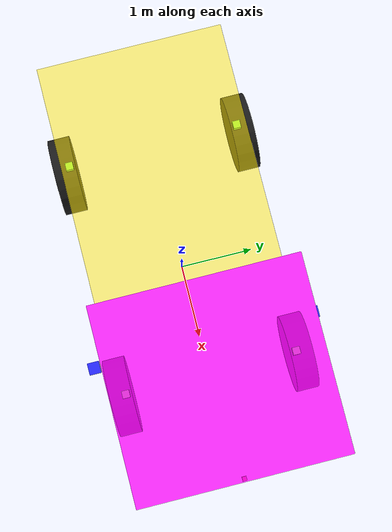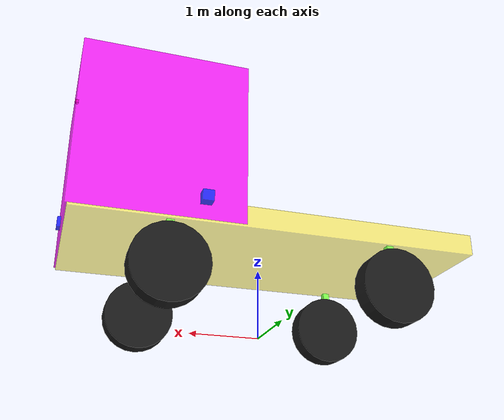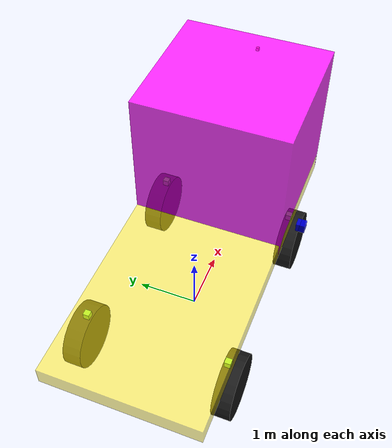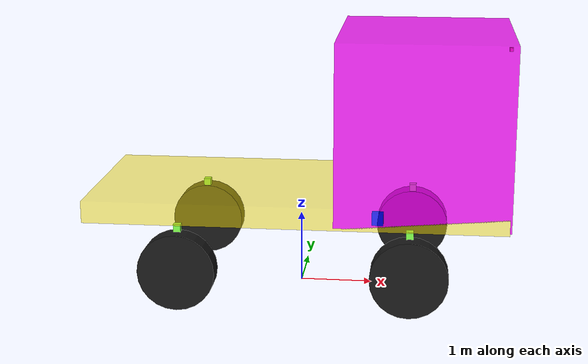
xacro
<?xml version="1.0"?>

<!-- Robot name -->
<robot name="at" xmlns:xacro="http://www.ros.org/wiki/xacro">

<!-- Included URDF Files -->
<xacro:include filename="$(find at_gazebo)/gazebo/at.gazebo" />
<xacro:include filename="$(find arts_description)/urdf/arts.xacro" />

<!-- user input dimensions  ( DEBUG: all mass values have been divided by 100 )  -->
<xacro:property name="robot"    value="at" />
<xacro:property name="pi"       value="3.141592" />
<xacro:property name="body_length"   value="5.69" />
<xacro:property name="body_width"    value="2.495" />
<xacro:property name="body_height"   value="0.523" />
<xacro:property name="body_mass"   value="1000." />
<xacro:property name="platform_length"   value="${body_length}" />
<xacro:property name="platform_width"   value="2.495" />
<xacro:property name="platform_height"   value=".3" />
<xacro:property name="platform_mass"   value="500." />
<xacro:property name="wheel_width"    value="0.05" />
<xacro:property name="wheel_width_vis"    value="0.3" />
<xacro:property name="wheel_radius"   value="0.523" />
<xacro:property name="wheel_mass"   value="100." />
<xacro:property name="wheel_hinge_width"   value="0.1" />
<xacro:property name="wheel_hinge_mass"   value="10." />
<xacro:property name="lidar_mass"   value="1." />
<xacro:property name="lidar_side"   value="0.15" />

<!-- TNO definitions -->
<xacro:property name="camera_link" value="0.05" /> <!-- Size of square 'camera' box -->
<!-- derived dimensions -->
<xacro:property name="wheel_hinge_height"   value="${wheel_radius+0.1}" />
<xacro:property name="body_floor_clearance"   value="${wheel_radius+wheel_hinge_height-body_height}" />

<!-- ~~~~~~~~~~~~~~~~~~~~~~~ BODY AND PLATFORM ~~~~~~~~~~~~~~~~~~~~~~~~~~~~~~~~~~~~~~~~ -->

<!-- at Footprint Link (at footprint on ground)-->
<link name="${robot}_footprint">
    <visual>
        <origin xyz="0 0 0" rpy="0 0 0"/>
        <geometry>
            <box size="0.01 0.01 0.01"/>
        </geometry>
        <material name="white">
            <color rgba="1 1 1 0.1"/>
        </material>
    </visual>

<!--    Comment collision below for normal mode: wheels on te ground -->
<!--    Uncomment collision below for "Podium" mode: Useful to check wheel control without moving at -->
</link>

<!-- at Base Link (at body)-->
<joint name="${robot}_footprint_2_base" type="fixed" >
    <parent link="${robot}_footprint"/>
    <child link="${robot}_base_link"/>
    <origin xyz="0 0 ${body_floor_clearance+0.5*body_height}" rpy="0 0 0"/>
</joint>
<link name="${robot}_base_link">

</link>

<!-- at top platform-->
<joint name="${robot}_base_2_platform" type="fixed" >
    <parent link="${robot}_base_link"/>
    <child link="${robot}_platform"/>
    <origin xyz="0 0 ${0.5*body_height + 0.5*platform_height}" rpy="0 0 0"/>
</joint>
<link name="${robot}_platform">
    <visual>
        <origin xyz="0 0 0" rpy="0 0 0"/>
        <geometry>
            <box size="${platform_length} ${platform_width} ${platform_height}"/>
        </geometry>
        <material name="yellow">
            <color rgba="1.0 0.9 0.0 0.5"/>
        </material>
    </visual>

    <collision>
        <origin xyz="0 0 0" rpy="0 0 0"/>
        <geometry>
            <box size="${platform_length} ${platform_width} ${platform_height}"/>
        </geometry>
    </collision>

    <inertial>
        <mass value="${platform_mass}" />
        <origin xyz="0 0 0" rpy="0 0 0"/>
        <inertia ixx="${0.083*platform_mass*(platform_width*platform_width+platform_height*platform_height)}"
                    ixy="0.0"
                    ixz="0.0"
                    iyy="${0.083*platform_mass*(platform_length*platform_length+platform_height*platform_height)}"
                    iyz="0.0"
                    izz="${0.083*platform_mass*(platform_length*platform_length+platform_width*platform_width)}" />
    </inertial>
</link>

<!-- at chassis -->
<joint name="${robot}_platform_2_chassis" type="fixed" >
    <parent link="${robot}_platform"/>
    <child link="${robot}_chassis"/>
    <origin xyz="${0.3*platform_length} 0 ${3.7*platform_height}" rpy="0 0 0"/>
</joint>
<link name="${robot}_chassis">
    <visual>
        <origin xyz="0 0 0" rpy="0 0 0"/>
        <geometry>
            <box size="2.325 2.495 2.452"/>
        </geometry>
        <material name="purple">
            <color rgba="1.0 0.0 1.0 0.8"/>
        </material>
    </visual>
       <collision>
        <origin xyz="0 0 0" rpy="0 0 0"/>
        <geometry>
            <box size="2.325 2.495 2.452"/>
        </geometry>
    </collision>
    <inertial>
        <mass value="0.01" />
        <origin xyz="0 0 0" rpy="0 0 0"/>
<inertia ixx="${0.083*platform_mass*(platform_width*platform_width+platform_height*platform_height)}"
                    ixy="0.0"
                    ixz="0.0"
                    iyy="${0.083*platform_mass*(platform_length*platform_length+platform_height*platform_height)}"
                    iyz="0.0"
                    izz="${0.083*platform_mass*(platform_length*platform_length+platform_width*platform_width)}" />
    </inertial>
</link>

<!-- ~~~~~~~~~~~~~~~~~~~~~~~~~~~~~~ WHEELS ~~~~~~~~~~~~~~~~~~~~~~~~~~~~~~~~~~~~~~~~~~~~ -->

<!-- front left hinge-->
<joint name="${robot}_platform_2_fl_hinge" type="revolute" >
    <parent link="${robot}_platform"/>
    <child link="${robot}_fl_hinge"/>
    <axis xyz="0 0 1"/>
    <limit effort="100000." lower="${-0.3*pi}" upper="${0.3*pi}" velocity="1."/>
    <dynamics damping="100."/>
    <origin xyz="${0.4*platform_length-wheel_radius-0.2} ${0.5*platform_width-0.5*wheel_hinge_width-wheel_width} ${-0.5*platform_height-0.5*wheel_hinge_height}" rpy="0 0 0"/>
</joint>
<link name="${robot}_fl_hinge">
    <visual>
        <origin xyz="0 0 0" rpy="0 0 0"/>
        <geometry>
            <box size="${wheel_hinge_width} ${wheel_hinge_width} ${wheel_hinge_height}"/>
        </geometry>
        <material name="green2">
            <color rgba="0.5 1 0.3 1"/>
        </material>
    </visual>
           <collision>
        <origin xyz="0 0 0" rpy="0 0 0"/>
        <geometry>
            <box size="${wheel_hinge_width} ${wheel_hinge_width} ${wheel_hinge_height}"/>
        </geometry>
    </collision>
    <inertial>
        <mass value="${wheel_hinge_mass}" />
        <origin xyz="0 0 0" rpy="0 0 0"/>
        <inertia ixx="${0.083*wheel_hinge_mass*(wheel_hinge_width*wheel_hinge_width+wheel_hinge_height*wheel_hinge_height)}"
                    ixy="0.0"
                    ixz="0.0"
                    iyy="${0.083*wheel_hinge_mass*(wheel_hinge_width*wheel_hinge_width+wheel_hinge_height*wheel_hinge_height)}"
                    iyz="0.0"
                    izz="${0.083*wheel_hinge_mass*(wheel_hinge_width*wheel_hinge_width+wheel_hinge_width*wheel_hinge_width)}" />
    </inertial>

</link>

<!-- front left wheel-->
<joint name="${robot}_fl_hinge_2_wheel" type="continuous" >
    <parent link="${robot}_fl_hinge"/>
    <child link="${robot}_fl_wheel"/>
    <axis xyz="0 0 1"/>
    <limit effort="100000." velocity="${pi}"/>
    <dynamics damping="0.2"/>
    <origin xyz="0 ${0.5*wheel_hinge_width+0.5*wheel_width} ${-0.5*wheel_hinge_height}" rpy="${-0.5*pi} 0 0"/>
</joint>
<link name="${robot}_fl_wheel">
    <visual>
        <origin xyz="0 0 0" rpy="0 0 0"/>
        <geometry>
            <cylinder length="${wheel_width_vis}" radius="${wheel_radius}"/>
        </geometry>
        <material name="grey">
            <color rgba="0.1 0.1 0.1 1"/>
        </material>
    </visual>

    <collision>
        <origin xyz="0 0 0" rpy="0 0 0"/>
        <geometry>
            <cylinder length="${wheel_width}" radius="${wheel_radius}"/>
        </geometry>
    </collision>

    <inertial>
        <mass value="${wheel_mass}" />
        <origin xyz="0 0 0" rpy="0 0 0"/>
        <inertia ixx="${0.083*wheel_mass*(3*wheel_radius*wheel_radius+wheel_width*wheel_width)}"
                    ixy="0.0"
                    ixz="0.0"
                    iyy="${0.083*wheel_mass*(3*wheel_radius*wheel_radius+wheel_width*wheel_width)}"
                    iyz="0.0"
                    izz="${0.5*wheel_mass*wheel_radius*wheel_radius}" />
    </inertial>
</link>

<!-- front right hinge-->
<joint name="${robot}_platform_2_fr_hinge" type="revolute" >
    <parent link="${robot}_platform"/>
    <child link="${robot}_fr_hinge"/>
    <axis xyz="0 0 1"/>
    <limit effort="100000." lower="${-0.3*pi}" upper="${0.3*pi}" velocity="1."/>
    <dynamics damping="100."/>
    <origin xyz="${0.4*platform_length-wheel_radius-0.2} ${-0.5*platform_width+0.5*wheel_hinge_width+wheel_width} ${-0.5*platform_height-0.5*wheel_hinge_height}" rpy="0 0 0"/>
</joint>
<link name="${robot}_fr_hinge">
    <visual>
        <origin xyz="0 0 0" rpy="0 0 0"/>
        <geometry>
            <box size="${wheel_hinge_width} ${wheel_hinge_width} ${wheel_hinge_height}"/>
        </geometry>
        <material name="green2">
            <color rgba="0.5 1 0.3 1"/>
        </material>
    </visual>

    <inertial>
        <mass value="${wheel_hinge_mass}" />
        <origin xyz="0 0 0" rpy="0 0 0"/>
        <inertia ixx="${0.083*wheel_hinge_mass*(wheel_hinge_width*wheel_hinge_width+wheel_hinge_height*wheel_hinge_height)}"
                    ixy="0.0"
                    ixz="0.0"
                    iyy="${0.083*wheel_hinge_mass*(wheel_hinge_width*wheel_hinge_width+wheel_hinge_height*wheel_hinge_height)}"
                    iyz="0.0"
                    izz="${0.083*wheel_hinge_mass*(wheel_hinge_width*wheel_hinge_width+wheel_hinge_width*wheel_hinge_width)}" />
    </inertial>

</link>

<!-- front right wheel-->
<joint name="${robot}_fr_hinge_2_wheel" type="continuous" >
    <parent link="${robot}_fr_hinge"/>
    <child link="${robot}_fr_wheel"/>
    <axis xyz="0 0 1"/>
    <limit effort="100000." velocity="${pi}"/>
    <dynamics damping="0.2"/>
    <origin xyz="0 ${-0.5*wheel_hinge_width-0.5*wheel_width} ${-0.5*wheel_hinge_height}" rpy="${-0.5*pi} 0 0"/>
</joint>
<link name="${robot}_fr_wheel">
    <visual>
        <origin xyz="0 0 0" rpy="0 0 0"/>
        <geometry>
            <cylinder length="${wheel_width_vis}" radius="${wheel_radius}"/>
        </geometry>
        <material name="grey">
            <color rgba="0.1 0.1 0.1 1"/>
        </material>
    </visual>

    <collision>
        <origin xyz="0 0 0" rpy="0 0 0"/>
        <geometry>
            <cylinder length="${wheel_width}" radius="${wheel_radius}"/>
        </geometry>
    </collision>

    <inertial>
        <mass value="${wheel_mass}" />
        <origin xyz="0 0 0" rpy="0 0 0"/>
        <inertia ixx="${0.083*wheel_mass*(3*wheel_radius*wheel_radius+wheel_width*wheel_width)}"
                    ixy="0.0"
                    ixz="0.0"
                    iyy="${0.083*wheel_mass*(3*wheel_radius*wheel_radius+wheel_width*wheel_width)}"
                    iyz="0.0"
                    izz="${0.5*wheel_mass*wheel_radius*wheel_radius}" />
    </inertial>
</link>

<!-- back left hinge-->
<joint name="${robot}_platform_2_bl_hinge" type="revolute" >
    <parent link="${robot}_platform"/>
    <child link="${robot}_bl_hinge"/>
    <axis xyz="0 0 1"/>
    <limit effort="100000." lower="${-0.3*pi}" upper="${0.3*pi}" velocity="1."/>
    <dynamics damping="100."/>
    <origin xyz="${-0.4*platform_length+wheel_radius+0.2} ${0.5*platform_width-0.5*wheel_hinge_width-wheel_width} ${-0.5*platform_height-0.5*wheel_hinge_height}" rpy="0 0 0"/>
</joint>
<link name="${robot}_bl_hinge">
    <visual>
        <origin xyz="0 0 0" rpy="0 0 0"/>
        <geometry>
            <box size="${wheel_hinge_width} ${wheel_hinge_width} ${wheel_hinge_height}"/>
        </geometry>
        <material name="green2">
            <color rgba="0.5 1 0.3 1"/>
        </material>
    </visual>

    <inertial>
        <mass value="${wheel_hinge_mass}" />
        <origin xyz="0 0 0" rpy="0 0 0"/>
        <inertia ixx="${0.083*wheel_hinge_mass*(wheel_hinge_width*wheel_hinge_width+wheel_hinge_height*wheel_hinge_height)}"
                    ixy="0.0"
                    ixz="0.0"
                    iyy="${0.083*wheel_hinge_mass*(wheel_hinge_width*wheel_hinge_width+wheel_hinge_height*wheel_hinge_height)}"
                    iyz="0.0"
                    izz="${0.083*wheel_hinge_mass*(wheel_hinge_width*wheel_hinge_width+wheel_hinge_width*wheel_hinge_width)}" />
    </inertial>
</link>

<!-- back left wheel-->
<joint name="${robot}_bl_hinge_2_wheel" type="continuous" >
    <parent link="${robot}_bl_hinge"/>
    <child link="${robot}_bl_wheel"/>
    <axis xyz="0 0 1"/>
    <limit effort="100000." velocity="${pi}"/>
    <dynamics damping="0.2"/>
    <origin xyz="0 ${0.5*wheel_hinge_width+0.5*wheel_width} ${-0.5*wheel_hinge_height}" rpy="${-0.5*pi} 0 0"/>
</joint>
<link name="${robot}_bl_wheel">
    <visual>
        <origin xyz="0 0 0" rpy="0 0 0"/>
        <geometry>
            <cylinder length="${wheel_width_vis}" radius="${wheel_radius}"/>
        </geometry>
        <material name="grey">
            <color rgba="0.1 0.1 0.1 1"/>
        </material>
    </visual>

    <collision>
        <origin xyz="0 0 0" rpy="0 0 0"/>
        <geometry>
            <cylinder length="${wheel_width}" radius="${wheel_radius}"/>
        </geometry>
    </collision>

    <inertial>
        <mass value="${wheel_mass}" />
        <origin xyz="0 0 0" rpy="0 0 0"/>
        <inertia ixx="${0.083*wheel_mass*(3*wheel_radius*wheel_radius+wheel_width*wheel_width)}"
                    ixy="0.0"
                    ixz="0.0"
                    iyy="${0.083*wheel_mass*(3*wheel_radius*wheel_radius+wheel_width*wheel_width)}"
                    iyz="0.0"
                    izz="${0.5*wheel_mass*wheel_radius*wheel_radius}" />
    </inertial>
</link>

<!-- back right hinge-->
<joint name="${robot}_platform_2_br_hinge" type="revolute" >
    <parent link="${robot}_platform"/>
    <child link="${robot}_br_hinge"/>
    <axis xyz="0 0 1"/>
    <limit effort="100000." lower="${-0.3*pi}" upper="${0.3*pi}" velocity="1."/>
    <dynamics damping="100."/>
    <origin xyz="${-0.4*platform_length+wheel_radius+0.2} ${-0.5*platform_width+0.5*wheel_hinge_width+wheel_width} ${-0.5*platform_height-0.5*wheel_hinge_height}" rpy="0 0 0"/>
</joint>
<link name="${robot}_br_hinge">
    <visual>
        <origin xyz="0 0 0" rpy="0 0 0"/>
        <geometry>
            <box size="${wheel_hinge_width} ${wheel_hinge_width} ${wheel_hinge_height}"/>
        </geometry>
        <material name="green2">
            <color rgba="0.5 1 0.3 1"/>
        </material>
    </visual>

    <inertial>
        <mass value="${wheel_hinge_mass}" />
        <origin xyz="0 0 0" rpy="0 0 0"/>
        <inertia ixx="${0.083*wheel_hinge_mass*(wheel_hinge_width*wheel_hinge_width+wheel_hinge_height*wheel_hinge_height)}"
                    ixy="0.0"
                    ixz="0.0"
                    iyy="${0.083*wheel_hinge_mass*(wheel_hinge_width*wheel_hinge_width+wheel_hinge_height*wheel_hinge_height)}"
                    iyz="0.0"
                    izz="${0.083*wheel_hinge_mass*(wheel_hinge_width*wheel_hinge_width+wheel_hinge_width*wheel_hinge_width)}" />
    </inertial>
</link>

<!-- back right wheel-->
<joint name="${robot}_br_hinge_2_wheel" type="continuous" >
    <parent link="${robot}_br_hinge"/>
    <child link="${robot}_br_wheel"/>
    <axis xyz="0 0 1"/>
    <limit effort="100000." velocity="${pi}"/>
    <dynamics damping="0.2"/>
    <origin xyz="0 ${-0.5*wheel_hinge_width-0.5*wheel_width} ${-0.5*wheel_hinge_height}" rpy="${-0.5*pi} 0 0"/>
</joint>
<link name="${robot}_br_wheel">
    <visual>
        <origin xyz="0 0 0" rpy="0 0 0"/>
        <geometry>
            <cylinder length="${wheel_width_vis}" radius="${wheel_radius}"/>
        </geometry>
        <material name="grey">
            <color rgba="0.1 0.1 0.1 1"/>
        </material>
    </visual>

    <collision>
        <origin xyz="0 0 0" rpy="0 0 0"/>
        <geometry>
            <cylinder length="${wheel_width}" radius="${wheel_radius}"/>
        </geometry>
    </collision>

    <inertial>
        <mass value="${wheel_mass}" />
        <origin xyz="0 0 0" rpy="0 0 0"/>
        <inertia ixx="${0.083*wheel_mass*(3*wheel_radius*wheel_radius+wheel_width*wheel_width)}"
                    ixy="0.0"
                    ixz="0.0"
                    iyy="${0.083*wheel_mass*(3*wheel_radius*wheel_radius+wheel_width*wheel_width)}"
                    iyz="0.0"
                    izz="${0.5*wheel_mass*wheel_radius*wheel_radius}" />
    </inertial>
</link>

<!-- ~~~~~~~~~~~~~~~~~~~~~~~~~~~~~~ SENSORS ~~~~~~~~~~~~~~~~~~~~~~~~~~~~~~~~~~~~~~~~~~~ -->
<!--  front lidar -->
<joint name="${robot}_platform_2_lidar0" type="fixed" >
    <parent link="${robot}_platform"/>
    <child link="${robot}_lidar0"/>
    <origin xyz="${0.5*platform_length} 0 ${0.2*body_height}" rpy="0 0 0"/>
</joint>
<link name="${robot}_lidar0">
    <visual>
        <origin xyz="0 0 0" rpy="0 0 0"/>
        <geometry>
            <box size="${lidar_side} ${lidar_side} ${lidar_side}"/>
        </geometry>
        <material name="blue">
            <color rgba="0.0 0.0 1. 0.8"/>
        </material>
    </visual>

    <inertial>
        <mass value="${lidar_mass}" />
        <origin xyz="0 0 0" rpy="0 0 0"/>
        <inertia ixx="${0.083*lidar_mass*(2*lidar_side*lidar_side)}"
                ixy="0.0"
                ixz="0.0"
                iyy="${0.083*lidar_mass*(2*lidar_side*lidar_side)}"
                iyz="0.0"
                izz="${0.083*lidar_mass*(2*lidar_side*lidar_side)}" />
    </inertial>
</link>

<!--  side left lidar -->
<joint name="${robot}_platform_2_lidar2" type="fixed" >
    <parent link="${robot}_platform"/>
    <child link="${robot}_lidar2"/>
    <origin xyz="${0.2*platform_length} ${0.5*platform_width+0.2} ${0.2*body_height}" rpy="0 0 ${0.5*pi}"/>
</joint>
<link name="${robot}_lidar2">
    <visual>
        <origin xyz="0 0 0" rpy="0 0 0"/>
        <geometry>
            <box size="${lidar_side} ${lidar_side} ${lidar_side}"/>
        </geometry>
        <material name="blue">
            <color rgba="0.0 0.0 1. 0.8"/>
        </material>
    </visual>

    <inertial>
        <mass value="${lidar_mass}" />
        <origin xyz="0 0 0" rpy="0 0 0"/>
        <inertia ixx="${0.083*lidar_mass*(2*lidar_side*lidar_side)}"
                ixy="0.0"
                ixz="0.0"
                iyy="${0.083*lidar_mass*(2*lidar_side*lidar_side)}"
                iyz="0.0"
                izz="${0.083*lidar_mass*(2*lidar_side*lidar_side)}" />
    </inertial>
</link>

<!--  side right lidar -->
<joint name="${robot}_platform_2_lidar3" type="fixed" >
    <parent link="${robot}_platform"/>
    <child link="${robot}_lidar3"/>
    <origin xyz="${0.2*platform_length} ${-0.5*platform_width-0.2} ${0.2*body_height}" rpy="0 0 ${-0.5*pi}"/>
</joint>
<link name="${robot}_lidar3">
    <visual>
        <origin xyz="0 0 0" rpy="0 0 0"/>
        <geometry>
            <box size="${lidar_side} ${lidar_side} ${lidar_side}"/>
        </geometry>
        <material name="blue">
            <color rgba="0.0 0.0 1. 0.8"/>
        </material>
    </visual>

    <inertial>
        <mass value="${lidar_mass}" />
        <origin xyz="0 0 0" rpy="0 0 0"/>
        <inertia ixx="${0.083*lidar_mass*(2*lidar_side*lidar_side)}"
                ixy="0.0"
                ixz="0.0"
                iyy="${0.083*lidar_mass*(2*lidar_side*lidar_side)}"
                iyz="0.0"
                izz="${0.083*lidar_mass*(2*lidar_side*lidar_side)}" />
    </inertial>
</link>

  <!-- Camera -->

<joint name="${robot}_platform_2_cam" type="fixed" >
    <axis xyz="0 1 0" />
    <origin xyz="${0.5*platform_length} 0 ${4*body_height}" rpy="0 0 0"/>
    <parent link="${robot}_platform"/>
    <child link="${robot}_cam"/>
  </joint>

<link name="${robot}_cam">
    <collision>
      <origin xyz="0 0 0" rpy="0 0 0"/>
      <geometry>
    <box size="${camera_link} ${camera_link} ${camera_link}"/>
      </geometry>
    </collision>

    <visual>
      <origin xyz="0 0 0" rpy="0 0 0"/>
      <geometry>
    <box size="${camera_link} ${camera_link} ${camera_link}"/>
      </geometry>
      <material name="red"/>
    </visual>

    <inertial>
      <mass value="1e-5" />
      <origin xyz="0 0 0" rpy="0 0 0"/>
      <inertia ixx="1e-6" ixy="0" ixz="0" iyy="1e-6" iyz="0" izz="1e-6" />
    </inertial>
  </link>

<!-- ~~~~~~~~~~~~~~~~~~~~~~~~~~~~~~ TRANSMISSIONS ~~~~~~~~~~~~~~~~~~~~~~~~~~~~~~~~~~~~~~~~~~~ -->
<!-- front left steering -->
<transmission name="${robot}_fl_steer">
    <type>transmission_interface/SimpleTransmission</type>
    <joint name="${robot}_platform_2_fl_hinge">
        <hardwareInterface>EffortJointInterface</hardwareInterface>
    </joint>
    <actuator name="${robot}_fl_steer_motor">
        <hardwareInterface>EffortJointInterface</hardwareInterface>
        <mechanicalReduction>1</mechanicalReduction>
    </actuator>
</transmission>

<!-- front right steering -->
<transmission name="${robot}_fr_steer">
    <type>transmission_interface/SimpleTransmission</type>
    <joint name="${robot}_platform_2_fr_hinge">
        <hardwareInterface>EffortJointInterface</hardwareInterface>
    </joint>
    <actuator name="${robot}_fr_steer_motor">
        <hardwareInterface>EffortJointInterface</hardwareInterface>
        <mechanicalReduction>1</mechanicalReduction>
    </actuator>
</transmission>

<!-- front left driving -->
<transmission name="${robot}_fl_drive">
    <type>transmission_interface/SimpleTransmission</type>
    <joint name="${robot}_fl_hinge_2_wheel">
        <hardwareInterface>EffortJointInterface</hardwareInterface>
    </joint>
    <actuator name="${robot}_fl_drive_motor">
        <hardwareInterface>EffortJointInterface</hardwareInterface>
        <mechanicalReduction>1</mechanicalReduction>
    </actuator>
</transmission>

<!-- front right driving -->
<transmission name="${robot}_fr_drive">
    <type>transmission_interface/SimpleTransmission</type>
    <joint name="${robot}_fr_hinge_2_wheel">
        <hardwareInterface>EffortJointInterface</hardwareInterface>
    </joint>
    <actuator name="${robot}_fr_drive_motor">
        <hardwareInterface>EffortJointInterface</hardwareInterface>
        <mechanicalReduction>1</mechanicalReduction>
    </actuator>
</transmission>

<!-- back left driving -->
<transmission name="${robot}_bl_drive">
    <type>transmission_interface/SimpleTransmission</type>
    <joint name="${robot}_bl_hinge_2_wheel">
        <hardwareInterface>EffortJointInterface</hardwareInterface>
    </joint>
    <actuator name="${robot}_bl_drive_motor">
        <hardwareInterface>EffortJointInterface</hardwareInterface>
        <mechanicalReduction>1</mechanicalReduction>
    </actuator>
</transmission>

<!-- back right driving -->
<transmission name="${robot}_br_drive">
    <type>transmission_interface/SimpleTransmission</type>
    <joint name="${robot}_br_hinge_2_wheel">
        <hardwareInterface>EffortJointInterface</hardwareInterface>
    </joint>
    <actuator name="${robot}_br_drive_motor">
        <hardwareInterface>EffortJointInterface</hardwareInterface>
        <mechanicalReduction>1</mechanicalReduction>
    </actuator>
</transmission>

</robot>
